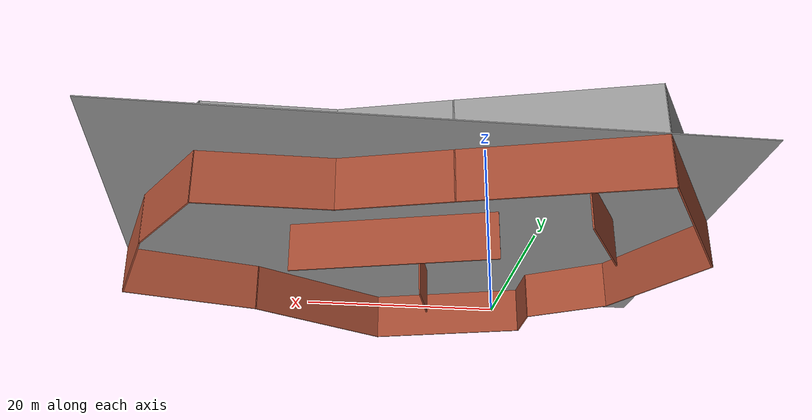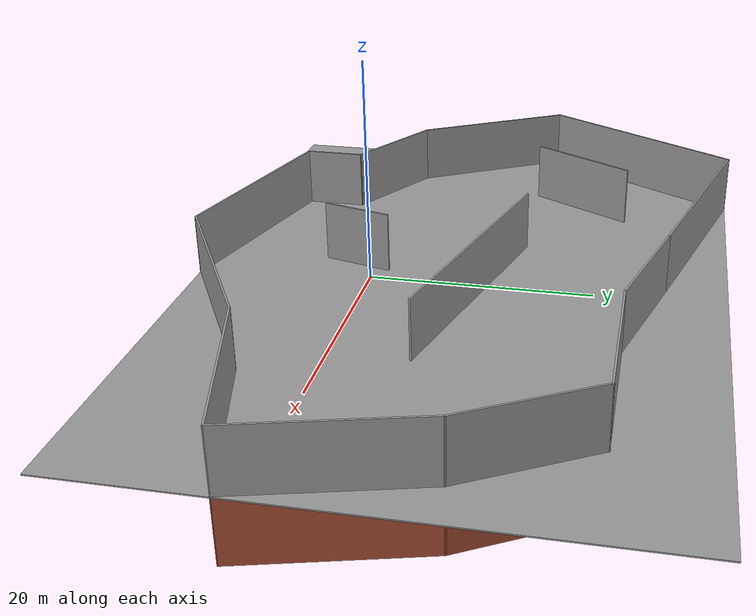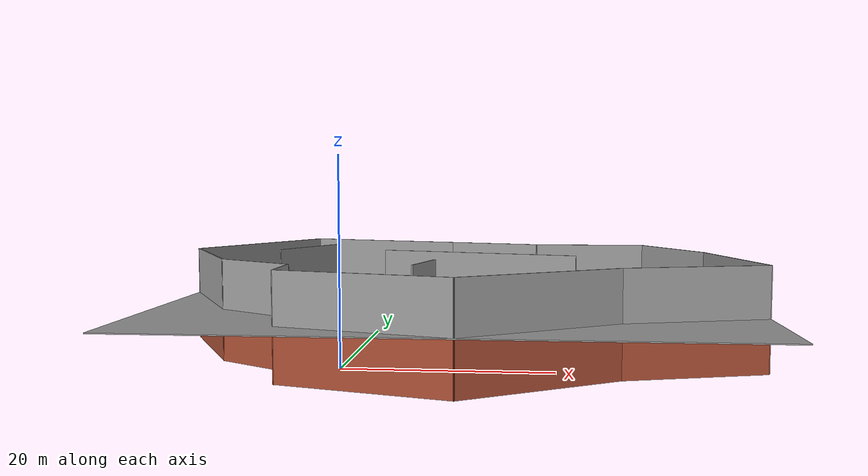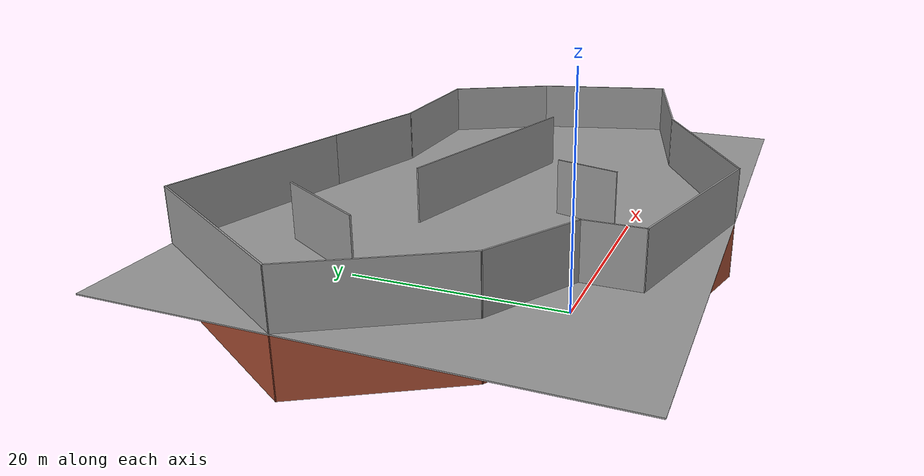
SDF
<?xml version='1.0'?>
<sdf version='1.6'>
  <model name='indoor1'>
    <pose frame=''>10.1354 9.92724 0 0 -0 0</pose>
    <link name='Floor_0'>
      <collision name='Floor_0_Collision'>
        <geometry>
          <box>
            <size>58.5728 41.9035 0.1</size>
          </box>
        </geometry>
        <pose frame=''>0 0 0.05 0 -0 0</pose>
      </collision>
      <visual name='Floor_0_Visual'>
        <pose frame=''>0 0 0.05 0 -0 0</pose>
        <geometry>
          <box>
            <size>58.5728 41.9035 0.1</size>
          </box>
        </geometry>
        <material>
          <script>
            <uri>file://media/materials/scripts/gazebo.material</uri>
            <name>Gazebo/Grey</name>
          </script>
          <ambient>1 1 1 1</ambient>
        </material>
        <meta>
          <layer>1</layer>
        </meta>
      </visual>
      <pose frame=''>-1e-06 1e-06 5 0 -0 0</pose>
    </link>
    <link name='Wall_0'>
      <collision name='Wall_0_Collision'>
        <geometry>
          <box>
            <size>5 0.15 5</size>
          </box>
        </geometry>
        <pose frame=''>0 0 2.5 0 -0 0</pose>
      </collision>
      <visual name='Wall_0_Visual'>
        <pose frame=''>0 0 2.5 0 -0 0</pose>
        <geometry>
          <box>
            <size>5 0.15 5</size>
          </box>
        </geometry>
        <material>
          <script>
            <uri>file://media/materials/scripts/gazebo.material</uri>
            <name>Gazebo/Bricks</name>
          </script>
          <ambient>1 1 1 1</ambient>
        </material>
        <meta>
          <layer>0</layer>
        </meta>
      </visual>
      <pose frame=''>-14.5724 -14.1282 0 0 -0 -1.5708</pose>
    </link>
    <link name='Wall_1'>
      <collision name='Wall_1_Collision'>
        <geometry>
          <box>
            <size>16.75 0.15 5</size>
          </box>
        </geometry>
        <pose frame=''>0 0 2.5 0 -0 0</pose>
      </collision>
      <visual name='Wall_1_Visual'>
        <pose frame=''>0 0 2.5 0 -0 0</pose>
        <geometry>
          <box>
            <size>16.75 0.15 5</size>
          </box>
        </geometry>
        <material>
          <script>
            <uri>file://media/materials/scripts/gazebo.material</uri>
            <name>Gazebo/Bricks</name>
          </script>
          <ambient>1 1 1 1</ambient>
        </material>
        <meta>
          <layer>0</layer>
        </meta>
      </visual>
      <pose frame=''>-6.55494 -18.7012 0 0 -0 -0.261766</pose>
    </link>
    <link name='Wall_10'>
      <collision name='Wall_10_Collision'>
        <geometry>
          <box>
            <size>14 0.15 5</size>
          </box>
        </geometry>
        <pose frame=''>0 0 2.5 0 -0 0</pose>
      </collision>
      <visual name='Wall_10_Visual'>
        <pose frame=''>0 0 2.5 0 -0 0</pose>
        <geometry>
          <box>
            <size>14 0.15 5</size>
          </box>
        </geometry>
        <material>
          <script>
            <uri>file://media/materials/scripts/gazebo.material</uri>
            <name>Gazebo/Bricks</name>
          </script>
          <ambient>1 1 1 1</ambient>
        </material>
        <meta>
          <layer>0</layer>
        </meta>
      </visual>
      <pose frame=''>-25.7209 -1.25624 0 0 -0 -1.04718</pose>
    </link>
    <link name='Wall_11'>
      <collision name='Wall_11_Collision'>
        <geometry>
          <box>
            <size>9.03144 0.15 5</size>
          </box>
        </geometry>
        <pose frame=''>0 0 2.5 0 -0 0</pose>
      </collision>
      <visual name='Wall_11_Visual'>
        <pose frame=''>0 0 2.5 0 -0 0</pose>
        <geometry>
          <box>
            <size>9.03144 0.15 5</size>
          </box>
        </geometry>
        <material>
          <script>
            <uri>file://media/materials/scripts/gazebo.material</uri>
            <name>Gazebo/Bricks</name>
          </script>
          <ambient>1 1 1 1</ambient>
        </material>
        <meta>
          <layer>0</layer>
        </meta>
      </visual>
      <pose frame=''>-18.4154 -9.47824 0 0 -0 -0.524816</pose>
    </link>
    <link name='Wall_13'>
      <collision name='Wall_13_Collision'>
        <geometry>
          <box>
            <size>21 0.15 5</size>
          </box>
        </geometry>
        <pose frame=''>0 0 2.5 0 -0 0</pose>
      </collision>
      <visual name='Wall_13_Visual'>
        <pose frame=''>0 0 2.5 0 -0 0</pose>
        <geometry>
          <box>
            <size>21 0.15 5</size>
          </box>
        </geometry>
        <material>
          <script>
            <uri>file://media/materials/scripts/gazebo.material</uri>
            <name>Gazebo/Bricks</name>
          </script>
          <ambient>1 1 1 1</ambient>
        </material>
        <meta>
          <layer>0</layer>
        </meta>
      </visual>
      <pose frame=''>1.94606 1.63376 0 0 -0 -0.261789</pose>
    </link>
    <link name='Wall_15'>
      <collision name='Wall_15_Collision'>
        <geometry>
          <box>
            <size>9.5 0.15 5</size>
          </box>
        </geometry>
        <pose frame=''>0 0 2.5 0 -0 0</pose>
      </collision>
      <visual name='Wall_15_Visual'>
        <pose frame=''>0 0 2.5 0 -0 0</pose>
        <geometry>
          <box>
            <size>9.5 0.15 5</size>
          </box>
        </geometry>
        <material>
          <script>
            <uri>file://media/materials/scripts/gazebo.material</uri>
            <name>Gazebo/Bricks</name>
          </script>
          <ambient>1 1 1 1</ambient>
        </material>
        <meta>
          <layer>0</layer>
        </meta>
      </visual>
      <pose frame=''>-17.3919 8.07926 0 0 -0 -2.09441</pose>
    </link>
    <link name='Wall_18'>
      <collision name='Wall_18_Collision'>
        <geometry>
          <box>
            <size>5.75 0.15 5</size>
          </box>
        </geometry>
        <pose frame=''>0 0 2.5 0 -0 0</pose>
      </collision>
      <visual name='Wall_18_Visual'>
        <pose frame=''>0 0 2.5 0 -0 0</pose>
        <geometry>
          <box>
            <size>5.75 0.15 5</size>
          </box>
        </geometry>
        <material>
          <script>
            <uri>file://media/materials/scripts/gazebo.material</uri>
            <name>Gazebo/Bricks</name>
          </script>
          <ambient>1 1 1 1</ambient>
        </material>
        <meta>
          <layer>0</layer>
        </meta>
      </visual>
      <pose frame=''>-2.41344 -8.76824 0 0 -0 -1.83266</pose>
    </link>
    <link name='Wall_2'>
      <collision name='Wall_2_Collision'>
        <geometry>
          <box>
            <size>16.4589 0.15 5</size>
          </box>
        </geometry>
        <pose frame=''>0 0 2.5 0 -0 0</pose>
      </collision>
      <visual name='Wall_2_Visual'>
        <pose frame=''>0 0 2.5 0 -0 0</pose>
        <geometry>
          <box>
            <size>16.4589 0.15 5</size>
          </box>
        </geometry>
        <material>
          <script>
            <uri>file://media/materials/scripts/gazebo.material</uri>
            <name>Gazebo/Bricks</name>
          </script>
          <ambient>1 1 1 1</ambient>
        </material>
        <meta>
          <layer>0</layer>
        </meta>
      </visual>
      <pose frame=''>8.51856 -16.7617 0 0 -0 0.525056</pose>
    </link>
    <link name='Wall_20'>
      <collision name='Wall_20_Collision'>
        <geometry>
          <box>
            <size>5 0.15 5</size>
          </box>
        </geometry>
        <pose frame=''>0 0 2.5 0 -0 0</pose>
      </collision>
      <visual name='Wall_20_Visual'>
        <pose frame=''>0 0 2.5 0 -0 0</pose>
        <geometry>
          <box>
            <size>5 0.15 5</size>
          </box>
        </geometry>
        <material>
          <script>
            <uri>file://media/materials/scripts/gazebo.material</uri>
            <name>Gazebo/Grey</name>
          </script>
          <ambient>1 1 1 1</ambient>
        </material>
        <meta>
          <layer>1</layer>
        </meta>
      </visual>
      <pose frame=''>-14.5724 -14.1282 5 0 -0 -1.5708</pose>
    </link>
    <link name='Wall_21'>
      <collision name='Wall_21_Collision'>
        <geometry>
          <box>
            <size>16.7505 0.15 5</size>
          </box>
        </geometry>
        <pose frame=''>0 0 2.5 0 -0 0</pose>
      </collision>
      <visual name='Wall_21_Visual'>
        <pose frame=''>0 0 2.5 0 -0 0</pose>
        <geometry>
          <box>
            <size>16.7505 0.15 5</size>
          </box>
        </geometry>
        <material>
          <script>
            <uri>file://media/materials/scripts/gazebo.material</uri>
            <name>Gazebo/Grey</name>
          </script>
          <ambient>1 1 1 1</ambient>
        </material>
        <meta>
          <layer>1</layer>
        </meta>
      </visual>
      <pose frame=''>-6.55494 -18.7012 5 0 -0 -0.261766</pose>
    </link>
    <link name='Wall_22'>
      <collision name='Wall_22_Collision'>
        <geometry>
          <box>
            <size>16.4589 0.15 5</size>
          </box>
        </geometry>
        <pose frame=''>0 0 2.5 0 -0 0</pose>
      </collision>
      <visual name='Wall_22_Visual'>
        <pose frame=''>0 0 2.5 0 -0 0</pose>
        <geometry>
          <box>
            <size>16.4589 0.15 5</size>
          </box>
        </geometry>
        <material>
          <script>
            <uri>file://media/materials/scripts/gazebo.material</uri>
            <name>Gazebo/Grey</name>
          </script>
          <ambient>1 1 1 1</ambient>
        </material>
        <meta>
          <layer>1</layer>
        </meta>
      </visual>
      <pose frame=''>8.51856 -16.7617 5 0 -0 0.525056</pose>
    </link>
    <link name='Wall_23'>
      <collision name='Wall_23_Collision'>
        <geometry>
          <box>
            <size>14.2503 0.15 5</size>
          </box>
        </geometry>
        <pose frame=''>0 0 2.5 0 -0 0</pose>
      </collision>
      <visual name='Wall_23_Visual'>
        <pose frame=''>0 0 2.5 0 -0 0</pose>
        <geometry>
          <box>
            <size>14.2503 0.15 5</size>
          </box>
        </geometry>
        <material>
          <script>
            <uri>file://media/materials/scripts/gazebo.material</uri>
            <name>Gazebo/Grey</name>
          </script>
          <ambient>1 1 1 1</ambient>
        </material>
        <meta>
          <layer>1</layer>
        </meta>
      </visual>
      <pose frame=''>22.3846 -10.8497 5 0 -0 0.261767</pose>
    </link>
    <link name='Wall_24'>
      <collision name='Wall_24_Collision'>
        <geometry>
          <box>
            <size>13.7383 0.15 5</size>
          </box>
        </geometry>
        <pose frame=''>0 0 2.5 0 -0 0</pose>
      </collision>
      <visual name='Wall_24_Visual'>
        <pose frame=''>0 0 2.5 0 -0 0</pose>
        <geometry>
          <box>
            <size>13.7383 0.15 5</size>
          </box>
        </geometry>
        <material>
          <script>
            <uri>file://media/materials/scripts/gazebo.material</uri>
            <name>Gazebo/Grey</name>
          </script>
          <ambient>1 1 1 1</ambient>
        </material>
        <meta>
          <layer>1</layer>
        </meta>
      </visual>
      <pose frame=''>27.4581 -2.45674 5 0 -0 1.82925</pose>
    </link>
    <link name='Wall_25'>
      <collision name='Wall_25_Collision'>
        <geometry>
          <box>
            <size>10.7501 0.15 5</size>
          </box>
        </geometry>
        <pose frame=''>0 0 2.5 0 -0 0</pose>
      </collision>
      <visual name='Wall_25_Visual'>
        <pose frame=''>0 0 2.5 0 -0 0</pose>
        <geometry>
          <box>
            <size>10.7501 0.15 5</size>
          </box>
        </geometry>
        <material>
          <script>
            <uri>file://media/materials/scripts/gazebo.material</uri>
            <name>Gazebo/Grey</name>
          </script>
          <ambient>1 1 1 1</ambient>
        </material>
        <meta>
          <layer>1</layer>
        </meta>
      </visual>
      <pose frame=''>23.0716 8.70176 5 0 -0 2.09439</pose>
    </link>
    <link name='Wall_26'>
      <collision name='Wall_26_Collision'>
        <geometry>
          <box>
            <size>12.392 0.15 5</size>
          </box>
        </geometry>
        <pose frame=''>0 0 2.5 0 -0 0</pose>
      </collision>
      <visual name='Wall_26_Visual'>
        <pose frame=''>0 0 2.5 0 -0 0</pose>
        <geometry>
          <box>
            <size>12.392 0.15 5</size>
          </box>
        </geometry>
        <material>
          <script>
            <uri>file://media/materials/scripts/gazebo.material</uri>
            <name>Gazebo/Grey</name>
          </script>
          <ambient>1 1 1 1</ambient>
        </material>
        <meta>
          <layer>1</layer>
        </meta>
      </visual>
      <pose frame=''>14.3006 13.2918 5 0 -0 3.14159</pose>
    </link>
    <link name='Wall_27'>
      <collision name='Wall_27_Collision'>
        <geometry>
          <box>
            <size>10.5888 0.15 5</size>
          </box>
        </geometry>
        <pose frame=''>0 0 2.5 0 -0 0</pose>
      </collision>
      <visual name='Wall_27_Visual'>
        <pose frame=''>0 0 2.5 0 -0 0</pose>
        <geometry>
          <box>
            <size>10.5888 0.15 5</size>
          </box>
        </geometry>
        <material>
          <script>
            <uri>file://media/materials/scripts/gazebo.material</uri>
            <name>Gazebo/Grey</name>
          </script>
          <ambient>1 1 1 1</ambient>
        </material>
        <meta>
          <layer>1</layer>
        </meta>
      </visual>
      <pose frame=''>3.15256 14.6958 5 0 -0 2.86924</pose>
    </link>
    <link name='Wall_28'>
      <collision name='Wall_28_Collision'>
        <geometry>
          <box>
            <size>18.3621 0.15 5</size>
          </box>
        </geometry>
        <pose frame=''>0 0 2.5 0 -0 0</pose>
      </collision>
      <visual name='Wall_28_Visual'>
        <pose frame=''>0 0 2.5 0 -0 0</pose>
        <geometry>
          <box>
            <size>18.3621 0.15 5</size>
          </box>
        </geometry>
        <material>
          <script>
            <uri>file://media/materials/scripts/gazebo.material</uri>
            <name>Gazebo/Grey</name>
          </script>
          <ambient>1 1 1 1</ambient>
        </material>
        <meta>
          <layer>1</layer>
        </meta>
      </visual>
      <pose frame=''>-10.6654 18.4743 5 0 -0 2.87778</pose>
    </link>
    <link name='Wall_29'>
      <collision name='Wall_29_Collision'>
        <geometry>
          <box>
            <size>18.9671 0.15 5</size>
          </box>
        </geometry>
        <pose frame=''>0 0 2.5 0 -0 0</pose>
      </collision>
      <visual name='Wall_29_Visual'>
        <pose frame=''>0 0 2.5 0 -0 0</pose>
        <geometry>
          <box>
            <size>18.9671 0.15 5</size>
          </box>
        </geometry>
        <material>
          <script>
            <uri>file://media/materials/scripts/gazebo.material</uri>
            <name>Gazebo/Grey</name>
          </script>
          <ambient>1 1 1 1</ambient>
        </material>
        <meta>
          <layer>1</layer>
        </meta>
      </visual>
      <pose frame=''>-24.3199 12.7948 5 0 -0 -2.11405</pose>
    </link>
    <link name='Wall_3'>
      <collision name='Wall_3_Collision'>
        <geometry>
          <box>
            <size>14.2502 0.15 5</size>
          </box>
        </geometry>
        <pose frame=''>0 0 2.5 0 -0 0</pose>
      </collision>
      <visual name='Wall_3_Visual'>
        <pose frame=''>0 0 2.5 0 -0 0</pose>
        <geometry>
          <box>
            <size>14.2502 0.15 5</size>
          </box>
        </geometry>
        <material>
          <script>
            <uri>file://media/materials/scripts/gazebo.material</uri>
            <name>Gazebo/Bricks</name>
          </script>
          <ambient>1 1 1 1</ambient>
        </material>
        <meta>
          <layer>0</layer>
        </meta>
      </visual>
      <pose frame=''>22.3846 -10.8497 0 0 -0 0.261767</pose>
    </link>
    <link name='Wall_30'>
      <collision name='Wall_30_Collision'>
        <geometry>
          <box>
            <size>13.9996 0.15 5</size>
          </box>
        </geometry>
        <pose frame=''>0 0 2.5 0 -0 0</pose>
      </collision>
      <visual name='Wall_30_Visual'>
        <pose frame=''>0 0 2.5 0 -0 0</pose>
        <geometry>
          <box>
            <size>13.9996 0.15 5</size>
          </box>
        </geometry>
        <material>
          <script>
            <uri>file://media/materials/scripts/gazebo.material</uri>
            <name>Gazebo/Grey</name>
          </script>
          <ambient>1 1 1 1</ambient>
        </material>
        <meta>
          <layer>1</layer>
        </meta>
      </visual>
      <pose frame=''>-25.7209 -1.25624 5 0 -0 -1.04718</pose>
    </link>
    <link name='Wall_31'>
      <collision name='Wall_31_Collision'>
        <geometry>
          <box>
            <size>9.03128 0.15 5</size>
          </box>
        </geometry>
        <pose frame=''>0 0 2.5 0 -0 0</pose>
      </collision>
      <visual name='Wall_31_Visual'>
        <pose frame=''>0 0 2.5 0 -0 0</pose>
        <geometry>
          <box>
            <size>9.03128 0.15 5</size>
          </box>
        </geometry>
        <material>
          <script>
            <uri>file://media/materials/scripts/gazebo.material</uri>
            <name>Gazebo/Grey</name>
          </script>
          <ambient>1 1 1 1</ambient>
        </material>
        <meta>
          <layer>1</layer>
        </meta>
      </visual>
      <pose frame=''>-18.4154 -9.47824 5 0 -0 -0.524816</pose>
    </link>
    <link name='Wall_32'>
      <collision name='Wall_32_Collision'>
        <geometry>
          <box>
            <size>20.9994 0.15 5</size>
          </box>
        </geometry>
        <pose frame=''>0 0 2.5 0 -0 0</pose>
      </collision>
      <visual name='Wall_32_Visual'>
        <pose frame=''>0 0 2.5 0 -0 0</pose>
        <geometry>
          <box>
            <size>20.9994 0.15 5</size>
          </box>
        </geometry>
        <material>
          <script>
            <uri>file://media/materials/scripts/gazebo.material</uri>
            <name>Gazebo/Grey</name>
          </script>
          <ambient>1 1 1 1</ambient>
        </material>
        <meta>
          <layer>1</layer>
        </meta>
      </visual>
      <pose frame=''>1.94606 1.63376 5 0 -0 -0.261789</pose>
    </link>
    <link name='Wall_33'>
      <collision name='Wall_33_Collision'>
        <geometry>
          <box>
            <size>9.49971 0.15 5</size>
          </box>
        </geometry>
        <pose frame=''>0 0 2.5 0 -0 0</pose>
      </collision>
      <visual name='Wall_33_Visual'>
        <pose frame=''>0 0 2.5 0 -0 0</pose>
        <geometry>
          <box>
            <size>9.49971 0.15 5</size>
          </box>
        </geometry>
        <material>
          <script>
            <uri>file://media/materials/scripts/gazebo.material</uri>
            <name>Gazebo/Grey</name>
          </script>
          <ambient>1 1 1 1</ambient>
        </material>
        <meta>
          <layer>1</layer>
        </meta>
      </visual>
      <pose frame=''>-17.3919 8.07926 5 0 -0 -2.09441</pose>
    </link>
    <link name='Wall_34'>
      <collision name='Wall_34_Collision'>
        <geometry>
          <box>
            <size>5.75095 0.15 5</size>
          </box>
        </geometry>
        <pose frame=''>0 0 2.5 0 -0 0</pose>
      </collision>
      <visual name='Wall_34_Visual'>
        <pose frame=''>0 0 2.5 0 -0 0</pose>
        <geometry>
          <box>
            <size>5.75095 0.15 5</size>
          </box>
        </geometry>
        <material>
          <script>
            <uri>file://media/materials/scripts/gazebo.material</uri>
            <name>Gazebo/Grey</name>
          </script>
          <ambient>1 1 1 1</ambient>
        </material>
        <meta>
          <layer>1</layer>
        </meta>
      </visual>
      <pose frame=''>-2.41344 -8.76824 5 0 -0 -1.83266</pose>
    </link>
    <link name='Wall_4'>
      <collision name='Wall_4_Collision'>
        <geometry>
          <box>
            <size>13.7384 0.15 5</size>
          </box>
        </geometry>
        <pose frame=''>0 0 2.5 0 -0 0</pose>
      </collision>
      <visual name='Wall_4_Visual'>
        <pose frame=''>0 0 2.5 0 -0 0</pose>
        <geometry>
          <box>
            <size>13.7384 0.15 5</size>
          </box>
        </geometry>
        <material>
          <script>
            <uri>file://media/materials/scripts/gazebo.material</uri>
            <name>Gazebo/Bricks</name>
          </script>
          <ambient>1 1 1 1</ambient>
        </material>
        <meta>
          <layer>0</layer>
        </meta>
      </visual>
      <pose frame=''>27.4581 -2.45674 0 0 -0 1.82925</pose>
    </link>
    <link name='Wall_5'>
      <collision name='Wall_5_Collision'>
        <geometry>
          <box>
            <size>10.75 0.15 5</size>
          </box>
        </geometry>
        <pose frame=''>0 0 2.5 0 -0 0</pose>
      </collision>
      <visual name='Wall_5_Visual'>
        <pose frame=''>0 0 2.5 0 -0 0</pose>
        <geometry>
          <box>
            <size>10.75 0.15 5</size>
          </box>
        </geometry>
        <material>
          <script>
            <uri>file://media/materials/scripts/gazebo.material</uri>
            <name>Gazebo/Bricks</name>
          </script>
          <ambient>1 1 1 1</ambient>
        </material>
        <meta>
          <layer>0</layer>
        </meta>
      </visual>
      <pose frame=''>23.0716 8.70176 0 0 -0 2.09439</pose>
    </link>
    <link name='Wall_6'>
      <collision name='Wall_6_Collision'>
        <geometry>
          <box>
            <size>12.392 0.15 5</size>
          </box>
        </geometry>
        <pose frame=''>0 0 2.5 0 -0 0</pose>
      </collision>
      <visual name='Wall_6_Visual'>
        <pose frame=''>0 0 2.5 0 -0 0</pose>
        <geometry>
          <box>
            <size>12.392 0.15 5</size>
          </box>
        </geometry>
        <material>
          <script>
            <uri>file://media/materials/scripts/gazebo.material</uri>
            <name>Gazebo/Bricks</name>
          </script>
          <ambient>1 1 1 1</ambient>
        </material>
        <meta>
          <layer>0</layer>
        </meta>
      </visual>
      <pose frame=''>14.3006 13.2918 0 0 -0 3.14159</pose>
    </link>
    <link name='Wall_7'>
      <collision name='Wall_7_Collision'>
        <geometry>
          <box>
            <size>10.5888 0.15 5</size>
          </box>
        </geometry>
        <pose frame=''>0 0 2.5 0 -0 0</pose>
      </collision>
      <visual name='Wall_7_Visual'>
        <pose frame=''>0 0 2.5 0 -0 0</pose>
        <geometry>
          <box>
            <size>10.5888 0.15 5</size>
          </box>
        </geometry>
        <material>
          <script>
            <uri>file://media/materials/scripts/gazebo.material</uri>
            <name>Gazebo/Bricks</name>
          </script>
          <ambient>1 1 1 1</ambient>
        </material>
        <meta>
          <layer>0</layer>
        </meta>
      </visual>
      <pose frame=''>3.15256 14.6958 0 0 -0 2.86924</pose>
    </link>
    <link name='Wall_8'>
      <collision name='Wall_8_Collision'>
        <geometry>
          <box>
            <size>18.3624 0.15 5</size>
          </box>
        </geometry>
        <pose frame=''>0 0 2.5 0 -0 0</pose>
      </collision>
      <visual name='Wall_8_Visual'>
        <pose frame=''>0 0 2.5 0 -0 0</pose>
        <geometry>
          <box>
            <size>18.3624 0.15 5</size>
          </box>
        </geometry>
        <material>
          <script>
            <uri>file://media/materials/scripts/gazebo.material</uri>
            <name>Gazebo/Bricks</name>
          </script>
          <ambient>1 1 1 1</ambient>
        </material>
        <meta>
          <layer>0</layer>
        </meta>
      </visual>
      <pose frame=''>-10.6654 18.4743 0 0 -0 2.87778</pose>
    </link>
    <link name='Wall_9'>
      <collision name='Wall_9_Collision'>
        <geometry>
          <box>
            <size>18.9669 0.15 5</size>
          </box>
        </geometry>
        <pose frame=''>0 0 2.5 0 -0 0</pose>
      </collision>
      <visual name='Wall_9_Visual'>
        <pose frame=''>0 0 2.5 0 -0 0</pose>
        <geometry>
          <box>
            <size>18.9669 0.15 5</size>
          </box>
        </geometry>
        <material>
          <script>
            <uri>file://media/materials/scripts/gazebo.material</uri>
            <name>Gazebo/Bricks</name>
          </script>
          <ambient>1 1 1 1</ambient>
        </material>
        <meta>
          <layer>0</layer>
        </meta>
      </visual>
      <pose frame=''>-24.3199 12.7948 0 0 -0 -2.11405</pose>
    </link>
    <static>1</static>
  </model>
</sdf>
